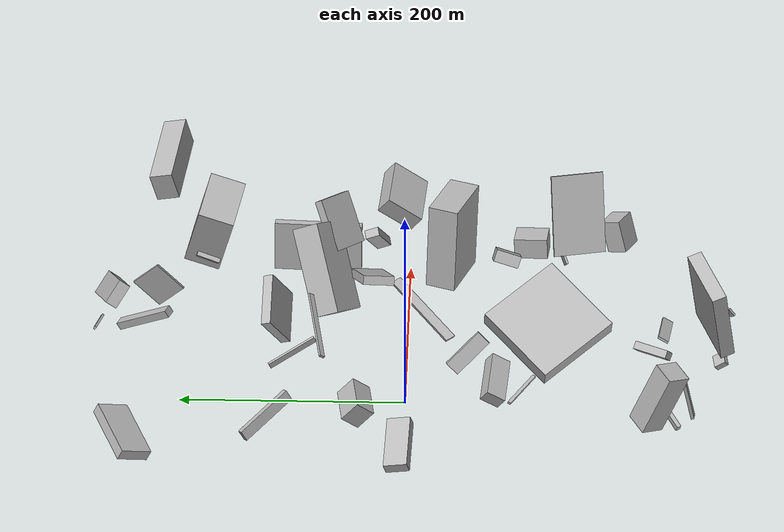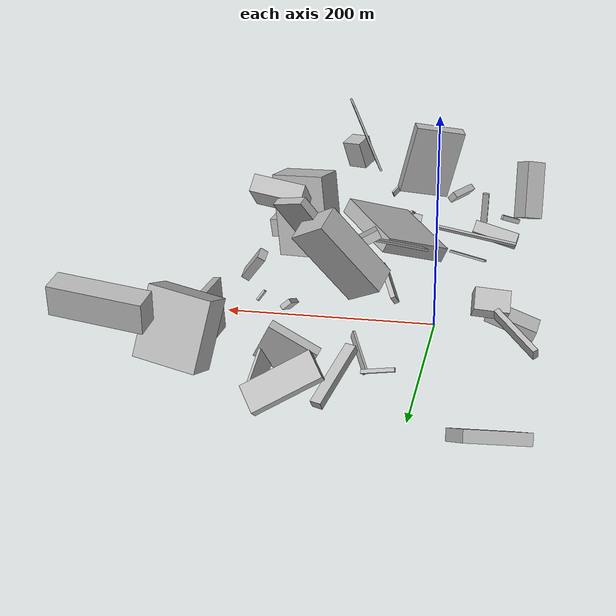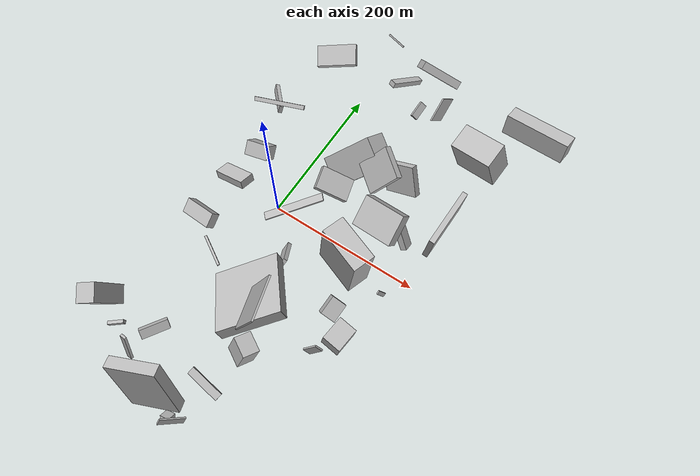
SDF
<sdf version="1.6">
 <world name="default">
  <model name="building_3">
   <static>0</static>
   <pose>192.97304236492172 85.47546947797791 27.54734295703527 -2.9246578618820553 -1.497058092645821 -0.24802232500230567</pose>
   <link name="link">
    <gravity>0</gravity>
    <pose>0 0 3.5 0 0 0</pose>
    <collision name="collision"><geometry><box><size>49 80 7</size></box></geometry></collision>
    <visual name="visual">
     <cast_shadows>0</cast_shadows>
     <geometry><box><size>49 80 7</size></box></geometry>
     <material>
      <script>
       <uri>model://HANNAS_wall/materials/scripts</uri>
       <uri>model://HANNAS_wall/materials/textures</uri>
       <name>vrc/HANNAS_wall</name>
      </script>
     </material>
    </visual>
   </link>
  </model>
  <model name="building_7">
   <static>0</static>
   <pose>98.99492832169584 53.38022202244819 98.04781571579076 -0.5966066065023401 0.2460232629847277 -0.652802261917523</pose>
   <link name="link">
    <gravity>0</gravity>
    <pose>0 0 23.5 0 0 0</pose>
    <collision name="collision"><geometry><box><size>38 8 47</size></box></geometry></collision>
    <visual name="visual">
     <cast_shadows>0</cast_shadows>
     <geometry><box><size>38 8 47</size></box></geometry>
     <material>
      <script>
       <uri>model://HANNAS_wall/materials/scripts</uri>
       <uri>model://HANNAS_wall/materials/textures</uri>
       <name>vrc/HANNAS_wall</name>
      </script>
     </material>
    </visual>
   </link>
  </model>
  <model name="building_8">
   <static>0</static>
   <pose>53.392055561887865 103.60945885586446 15.954613595145167 -2.7565607391013307 0.1871487923129102 -2.6466981905746803</pose>
   <link name="link">
    <gravity>0</gravity>
    <pose>0 0 3.5 0 0 0</pose>
    <collision name="collision"><geometry><box><size>2 47 7</size></box></geometry></collision>
    <visual name="visual">
     <cast_shadows>0</cast_shadows>
     <geometry><box><size>2 47 7</size></box></geometry>
     <material>
      <script>
       <uri>model://HANNAS_wall/materials/scripts</uri>
       <uri>model://HANNAS_wall/materials/textures</uri>
       <name>vrc/HANNAS_wall</name>
      </script>
     </material>
    </visual>
   </link>
  </model>
  <model name="building_9">
   <static>0</static>
   <pose>79.0645504053119 82.57378469528902 84.47843639129705 1.0219529320171858 0.44644635916374964 -0.5595807638957375</pose>
   <link name="link">
    <gravity>0</gravity>
    <pose>0 0 13.0 0 0 0</pose>
    <collision name="collision"><geometry><box><size>39 80 26</size></box></geometry></collision>
    <visual name="visual">
     <cast_shadows>0</cast_shadows>
     <geometry><box><size>39 80 26</size></box></geometry>
     <material>
      <script>
       <uri>model://HANNAS_wall/materials/scripts</uri>
       <uri>model://HANNAS_wall/materials/textures</uri>
       <name>vrc/HANNAS_wall</name>
      </script>
     </material>
    </visual>
   </link>
  </model>
  <model name="building_10">
   <static>0</static>
   <pose>-40.25971775455567 -91.22471693568569 34.157014128838526 -1.4544529416021201 -1.3992725000589104 -2.2122556049603386</pose>
   <link name="link">
    <gravity>0</gravity>
    <pose>0 0 21.5 0 0 0</pose>
    <collision name="collision"><geometry><box><size>2 3 43</size></box></geometry></collision>
    <visual name="visual">
     <cast_shadows>0</cast_shadows>
     <geometry><box><size>2 3 43</size></box></geometry>
     <material>
      <script>
       <uri>model://HANNAS_wall/materials/scripts</uri>
       <uri>model://HANNAS_wall/materials/textures</uri>
       <name>vrc/HANNAS_wall</name>
      </script>
     </material>
    </visual>
   </link>
  </model>
  <model name="building_12">
   <static>0</static>
   <pose>51.812866722415436 -125.35141071927168 56.93802087148891 2.8666292680924457 -0.32961631030790883 0.7921149419964638</pose>
   <link name="link">
    <gravity>0</gravity>
    <pose>0 0 8.0 0 0 0</pose>
    <collision name="collision"><geometry><box><size>80 80 16</size></box></geometry></collision>
    <visual name="visual">
     <cast_shadows>0</cast_shadows>
     <geometry><box><size>80 80 16</size></box></geometry>
     <material>
      <script>
       <uri>model://HANNAS_wall/materials/scripts</uri>
       <uri>model://HANNAS_wall/materials/textures</uri>
       <name>vrc/HANNAS_wall</name>
      </script>
     </material>
    </visual>
   </link>
  </model>
  <model name="building_13">
   <static>0</static>
   <pose>151.57226114424077 -139.58241697971692 55.20493538231259 -1.8301246924462284 -0.7921465529582314 0.5553801383233821</pose>
   <link name="link">
    <gravity>0</gravity>
    <pose>0 0 1.0 0 0 0</pose>
    <collision name="collision"><geometry><box><size>20 11 2</size></box></geometry></collision>
    <visual name="visual">
     <cast_shadows>0</cast_shadows>
     <geometry><box><size>20 11 2</size></box></geometry>
     <material>
      <script>
       <uri>model://HANNAS_wall/materials/scripts</uri>
       <uri>model://HANNAS_wall/materials/textures</uri>
       <name>vrc/HANNAS_wall</name>
      </script>
     </material>
    </visual>
   </link>
  </model>
  <model name="building_14">
   <static>0</static>
   <pose>48.35920126103789 -54.6272026651892 19.196860103909973 -2.1181220450352454 -0.6444645224232497 -1.0750417327579862</pose>
   <link name="link">
    <gravity>0</gravity>
    <pose>0 0 2.5 0 0 0</pose>
    <collision name="collision"><geometry><box><size>40 14 5</size></box></geometry></collision>
    <visual name="visual">
     <cast_shadows>0</cast_shadows>
     <geometry><box><size>40 14 5</size></box></geometry>
     <material>
      <script>
       <uri>model://HANNAS_wall/materials/scripts</uri>
       <uri>model://HANNAS_wall/materials/textures</uri>
       <name>vrc/HANNAS_wall</name>
      </script>
     </material>
    </visual>
   </link>
  </model>
  <model name="building_17">
   <static>0</static>
   <pose>91.73393288284846 -149.4729855063385 142.67462628431645 0.11336087703146594 -1.1797800560831904 0.15089494986948498</pose>
   <link name="link">
    <gravity>0</gravity>
    <pose>0 0 1.0 0 0 0</pose>
    <collision name="collision"><geometry><box><size>72 47 2</size></box></geometry></collision>
    <visual name="visual">
     <cast_shadows>0</cast_shadows>
     <geometry><box><size>72 47 2</size></box></geometry>
     <material>
      <script>
       <uri>model://HANNAS_wall/materials/scripts</uri>
       <uri>model://HANNAS_wall/materials/textures</uri>
       <name>vrc/HANNAS_wall</name>
      </script>
     </material>
    </visual>
   </link>
  </model>
  <model name="building_22">
   <static>0</static>
   <pose>68.66296248332662 -279.2420248553157 51.60006094592227 -1.2058246797877528 -0.6146042038206374 -2.3784577465728693</pose>
   <link name="link">
    <gravity>0</gravity>
    <pose>0 0 1.0 0 0 0</pose>
    <collision name="collision"><geometry><box><size>29 8 2</size></box></geometry></collision>
    <visual name="visual">
     <cast_shadows>0</cast_shadows>
     <geometry><box><size>29 8 2</size></box></geometry>
     <material>
      <script>
       <uri>model://HANNAS_wall/materials/scripts</uri>
       <uri>model://HANNAS_wall/materials/textures</uri>
       <name>vrc/HANNAS_wall</name>
      </script>
     </material>
    </visual>
   </link>
  </model>
  <model name="building_23">
   <static>0</static>
   <pose>-41.93206897605063 256.1865415013085 22.725359280032407 -2.0218059036257285 1.0971051826864333 1.6261815585331043</pose>
   <link name="link">
    <gravity>0</gravity>
    <pose>0 0 28.5 0 0 0</pose>
    <collision name="collision"><geometry><box><size>10 30 57</size></box></geometry></collision>
    <visual name="visual">
     <cast_shadows>0</cast_shadows>
     <geometry><box><size>10 30 57</size></box></geometry>
     <material>
      <script>
       <uri>model://HANNAS_wall/materials/scripts</uri>
       <uri>model://HANNAS_wall/materials/textures</uri>
       <name>vrc/HANNAS_wall</name>
      </script>
     </material>
    </visual>
   </link>
  </model>
  <model name="building_26">
   <static>0</static>
   <pose>125.08240620636778 -37.6451816503635 51.03166776860528 -0.003236962770427686 0.09934238568972567 -0.34138333387811043</pose>
   <link name="link">
    <gravity>0</gravity>
    <pose>0 0 40.0 0 0 0</pose>
    <collision name="collision"><geometry><box><size>55 27 80</size></box></geometry></collision>
    <visual name="visual">
     <cast_shadows>0</cast_shadows>
     <geometry><box><size>55 27 80</size></box></geometry>
     <material>
      <script>
       <uri>model://HANNAS_wall/materials/scripts</uri>
       <uri>model://HANNAS_wall/materials/textures</uri>
       <name>vrc/HANNAS_wall</name>
      </script>
     </material>
    </visual>
   </link>
  </model>
  <model name="building_27">
   <static>0</static>
   <pose>165.85706930077419 -111.60581612781034 46.27806818164005 -0.10385442796023583 -0.06947959670674576 -1.6751016431501464</pose>
   <link name="link">
    <gravity>0</gravity>
    <pose>0 0 9.5 0 0 0</pose>
    <collision name="collision"><geometry><box><size>30 23 19</size></box></geometry></collision>
    <visual name="visual">
     <cast_shadows>0</cast_shadows>
     <geometry><box><size>30 23 19</size></box></geometry>
     <material>
      <script>
       <uri>model://HANNAS_wall/materials/scripts</uri>
       <uri>model://HANNAS_wall/materials/textures</uri>
       <name>vrc/HANNAS_wall</name>
      </script>
     </material>
    </visual>
   </link>
  </model>
  <model name="building_28">
   <static>0</static>
   <pose>32.84942573214455 -260.8169294554072 85.76553445806833 1.3373594751007576 -0.17936247501234714 0.3754164837898614</pose>
   <link name="link">
    <gravity>0</gravity>
    <pose>0 0 6.5 0 0 0</pose>
    <collision name="collision"><geometry><box><size>56 80 13</size></box></geometry></collision>
    <visual name="visual">
     <cast_shadows>0</cast_shadows>
     <geometry><box><size>56 80 13</size></box></geometry>
     <material>
      <script>
       <uri>model://HANNAS_wall/materials/scripts</uri>
       <uri>model://HANNAS_wall/materials/textures</uri>
       <name>vrc/HANNAS_wall</name>
      </script>
     </material>
    </visual>
   </link>
  </model>
  <model name="building_29">
   <static>0</static>
   <pose>-71.00785007464488 -227.2633147749251 69.21059216478392 1.2750171090474498 0.1982551603962828 -2.584024716641018</pose>
   <link name="link">
    <gravity>0</gravity>
    <pose>0 0 11.0 0 0 0</pose>
    <collision name="collision"><geometry><box><size>21 60 22</size></box></geometry></collision>
    <visual name="visual">
     <cast_shadows>0</cast_shadows>
     <geometry><box><size>21 60 22</size></box></geometry>
     <material>
      <script>
       <uri>model://HANNAS_wall/materials/scripts</uri>
       <uri>model://HANNAS_wall/materials/textures</uri>
       <name>vrc/HANNAS_wall</name>
      </script>
     </material>
    </visual>
   </link>
  </model>
  <model name="building_32">
   <static>0</static>
   <pose>-55.74567919713176 48.64487231532478 48.74289724328681 -2.954519717243261 -0.8486920221953025 -1.5579897110546315</pose>
   <link name="link">
    <gravity>0</gravity>
    <pose>0 0 9.5 0 0 0</pose>
    <collision name="collision"><geometry><box><size>21 32 19</size></box></geometry></collision>
    <visual name="visual">
     <cast_shadows>0</cast_shadows>
     <geometry><box><size>21 32 19</size></box></geometry>
     <material>
      <script>
       <uri>model://HANNAS_wall/materials/scripts</uri>
       <uri>model://HANNAS_wall/materials/textures</uri>
       <name>vrc/HANNAS_wall</name>
      </script>
     </material>
    </visual>
   </link>
  </model>
  <model name="building_35">
   <static>0</static>
   <pose>-40.37084333612391 75.6035430083813 115.32081278706303 0.30516257133553365 0.6698893378986052 -1.1950745781209604</pose>
   <link name="link">
    <gravity>0</gravity>
    <pose>0 0 1.0 0 0 0</pose>
    <collision name="collision"><geometry><box><size>5 69 2</size></box></geometry></collision>
    <visual name="visual">
     <cast_shadows>0</cast_shadows>
     <geometry><box><size>5 69 2</size></box></geometry>
     <material>
      <script>
       <uri>model://HANNAS_wall/materials/scripts</uri>
       <uri>model://HANNAS_wall/materials/textures</uri>
       <name>vrc/HANNAS_wall</name>
      </script>
     </material>
    </visual>
   </link>
  </model>
  <model name="building_37">
   <static>0</static>
   <pose>191.7076387205769 195.3122338844505 62.879029736406835 -2.6377160418003642 -1.2410587985009705 -2.200646602155637</pose>
   <link name="link">
    <gravity>0</gravity>
    <pose>0 0 16.5 0 0 0</pose>
    <collision name="collision"><geometry><box><size>61 55 33</size></box></geometry></collision>
    <visual name="visual">
     <cast_shadows>0</cast_shadows>
     <geometry><box><size>61 55 33</size></box></geometry>
     <material>
      <script>
       <uri>model://HANNAS_wall/materials/scripts</uri>
       <uri>model://HANNAS_wall/materials/textures</uri>
       <name>vrc/HANNAS_wall</name>
      </script>
     </material>
    </visual>
   </link>
  </model>
  <model name="building_38">
   <static>0</static>
   <pose>14.776429453669166 -39.0748113785928 61.34994234849725 1.2315252162151353 0.014334508693323174 2.332139363748065</pose>
   <link name="link">
    <gravity>0</gravity>
    <pose>0 0 37.5 0 0 0</pose>
    <collision name="collision"><geometry><box><size>10 2 75</size></box></geometry></collision>
    <visual name="visual">
     <cast_shadows>0</cast_shadows>
     <geometry><box><size>10 2 75</size></box></geometry>
     <material>
      <script>
       <uri>model://HANNAS_wall/materials/scripts</uri>
       <uri>model://HANNAS_wall/materials/textures</uri>
       <name>vrc/HANNAS_wall</name>
      </script>
     </material>
    </visual>
   </link>
  </model>
  <model name="building_39">
   <static>0</static>
   <pose>-74.10918586029412 5.582899557096908 17.083594045775 -2.7888576397272993 -0.2139536871786498 -1.6969899526122818</pose>
   <link name="link">
    <gravity>0</gravity>
    <pose>0 0 5.5 0 0 0</pose>
    <collision name="collision"><geometry><box><size>21 48 11</size></box></geometry></collision>
    <visual name="visual">
     <cast_shadows>0</cast_shadows>
     <geometry><box><size>21 48 11</size></box></geometry>
     <material>
      <script>
       <uri>model://HANNAS_wall/materials/scripts</uri>
       <uri>model://HANNAS_wall/materials/textures</uri>
       <name>vrc/HANNAS_wall</name>
      </script>
     </material>
    </visual>
   </link>
  </model>
  <model name="building_42">
   <static>0</static>
   <pose>107.684089443589 -179.4808071598146 112.42194141037265 0.2180681000439083 -1.2258270892169485 0.8570280582382312</pose>
   <link name="link">
    <gravity>0</gravity>
    <pose>0 0 9.0 0 0 0</pose>
    <collision name="collision"><geometry><box><size>29 22 18</size></box></geometry></collision>
    <visual name="visual">
     <cast_shadows>0</cast_shadows>
     <geometry><box><size>29 22 18</size></box></geometry>
     <material>
      <script>
       <uri>model://HANNAS_wall/materials/scripts</uri>
       <uri>model://HANNAS_wall/materials/textures</uri>
       <name>vrc/HANNAS_wall</name>
      </script>
     </material>
    </visual>
   </link>
  </model>
  <model name="building_43">
   <static>0</static>
   <pose>168.99951674215015 3.62030542628716 125.20040753335608 -1.7536703840874441 -0.6277216093190615 1.5916032617293636</pose>
   <link name="link">
    <gravity>0</gravity>
    <pose>0 0 24.5 0 0 0</pose>
    <collision name="collision"><geometry><box><size>36 17 49</size></box></geometry></collision>
    <visual name="visual">
     <cast_shadows>0</cast_shadows>
     <geometry><box><size>36 17 49</size></box></geometry>
     <material>
      <script>
       <uri>model://HANNAS_wall/materials/scripts</uri>
       <uri>model://HANNAS_wall/materials/textures</uri>
       <name>vrc/HANNAS_wall</name>
      </script>
     </material>
    </visual>
   </link>
  </model>
  <model name="building_44">
   <static>0</static>
   <pose>50.4617173250888 24.49970527619613 97.16551498800928 2.7348011835571766 1.0755422417472351 3.009754866500202</pose>
   <link name="link">
    <gravity>0</gravity>
    <pose>0 0 20.5 0 0 0</pose>
    <collision name="collision"><geometry><box><size>8 28 41</size></box></geometry></collision>
    <visual name="visual">
     <cast_shadows>0</cast_shadows>
     <geometry><box><size>8 28 41</size></box></geometry>
     <material>
      <script>
       <uri>model://HANNAS_wall/materials/scripts</uri>
       <uri>model://HANNAS_wall/materials/textures</uri>
       <name>vrc/HANNAS_wall</name>
      </script>
     </material>
    </visual>
   </link>
  </model>
  <model name="building_49">
   <static>0</static>
   <pose>-77.04181570615671 119.53409264157665 46.99020208949826 -0.8103457580838639 -1.079362720725225 1.4975097125774715</pose>
   <link name="link">
    <gravity>0</gravity>
    <pose>0 0 2.5 0 0 0</pose>
    <collision name="collision"><geometry><box><size>10 54 5</size></box></geometry></collision>
    <visual name="visual">
     <cast_shadows>0</cast_shadows>
     <geometry><box><size>10 54 5</size></box></geometry>
     <material>
      <script>
       <uri>model://HANNAS_wall/materials/scripts</uri>
       <uri>model://HANNAS_wall/materials/textures</uri>
       <name>vrc/HANNAS_wall</name>
      </script>
     </material>
    </visual>
   </link>
  </model>
  <model name="building_50">
   <static>0</static>
   <pose>142.9552833954081 -99.11965541879601 52.27277878343352 1.0232931279796513 0.9808296548381057 2.59130009432672</pose>
   <link name="link">
    <gravity>0</gravity>
    <pose>0 0 11.5 0 0 0</pose>
    <collision name="collision"><geometry><box><size>11 19 23</size></box></geometry></collision>
    <visual name="visual">
     <cast_shadows>0</cast_shadows>
     <geometry><box><size>11 19 23</size></box></geometry>
     <material>
      <script>
       <uri>model://HANNAS_wall/materials/scripts</uri>
       <uri>model://HANNAS_wall/materials/textures</uri>
       <name>vrc/HANNAS_wall</name>
      </script>
     </material>
    </visual>
   </link>
  </model>
  <model name="building_52">
   <static>0</static>
   <pose>101.46238566602776 179.0114900969137 81.98394012883237 -0.4811257969110468 0.7690217569260585 2.708304690339609</pose>
   <link name="link">
    <gravity>0</gravity>
    <pose>0 0 4.5 0 0 0</pose>
    <collision name="collision"><geometry><box><size>4 21 9</size></box></geometry></collision>
    <visual name="visual">
     <cast_shadows>0</cast_shadows>
     <geometry><box><size>4 21 9</size></box></geometry>
     <material>
      <script>
       <uri>model://HANNAS_wall/materials/scripts</uri>
       <uri>model://HANNAS_wall/materials/textures</uri>
       <name>vrc/HANNAS_wall</name>
      </script>
     </material>
    </visual>
   </link>
  </model>
  <model name="building_54">
   <static>0</static>
   <pose>57.65268427449738 -278.679731863116 14.420013559639479 -1.9926179573129414 -0.8630274890786896 2.0443835236675523</pose>
   <link name="link">
    <gravity>0</gravity>
    <pose>0 0 6.0 0 0 0</pose>
    <collision name="collision"><geometry><box><size>6 11 12</size></box></geometry></collision>
    <visual name="visual">
     <cast_shadows>0</cast_shadows>
     <geometry><box><size>6 11 12</size></box></geometry>
     <material>
      <script>
       <uri>model://HANNAS_wall/materials/scripts</uri>
       <uri>model://HANNAS_wall/materials/textures</uri>
       <name>vrc/HANNAS_wall</name>
      </script>
     </material>
    </visual>
   </link>
  </model>
  <model name="building_57">
   <static>0</static>
   <pose>60.001931965487934 256.3210897154685 70.48531321385613 2.222422911879297 0.7358284944194815 2.3510326808650874</pose>
   <link name="link">
    <gravity>0</gravity>
    <pose>0 0 29.0 0 0 0</pose>
    <collision name="collision"><geometry><box><size>23 11 58</size></box></geometry></collision>
    <visual name="visual">
     <cast_shadows>0</cast_shadows>
     <geometry><box><size>23 11 58</size></box></geometry>
     <material>
      <script>
       <uri>model://HANNAS_wall/materials/scripts</uri>
       <uri>model://HANNAS_wall/materials/textures</uri>
       <name>vrc/HANNAS_wall</name>
      </script>
     </material>
    </visual>
   </link>
  </model>
  <model name="building_58">
   <static>0</static>
   <pose>199.86591164508425 225.55051025383128 88.5601113525206 1.474208054499677 0.22186937037667018 1.4561481345893674</pose>
   <link name="link">
    <gravity>0</gravity>
    <pose>0 0 40.0 0 0 0</pose>
    <collision name="collision"><geometry><box><size>21 27 80</size></box></geometry></collision>
    <visual name="visual">
     <cast_shadows>0</cast_shadows>
     <geometry><box><size>21 27 80</size></box></geometry>
     <material>
      <script>
       <uri>model://HANNAS_wall/materials/scripts</uri>
       <uri>model://HANNAS_wall/materials/textures</uri>
       <name>vrc/HANNAS_wall</name>
      </script>
     </material>
    </visual>
   </link>
  </model>
  <model name="building_61">
   <static>0</static>
   <pose>-24.82477960615968 -246.67846649237057 35.93315378077912 1.6384267388137714 -0.22469513499344493 -1.6490081996032495</pose>
   <link name="link">
    <gravity>0</gravity>
    <pose>0 0 3.5 0 0 0</pose>
    <collision name="collision"><geometry><box><size>3 49 7</size></box></geometry></collision>
    <visual name="visual">
     <cast_shadows>0</cast_shadows>
     <geometry><box><size>3 49 7</size></box></geometry>
     <material>
      <script>
       <uri>model://HANNAS_wall/materials/scripts</uri>
       <uri>model://HANNAS_wall/materials/textures</uri>
       <name>vrc/HANNAS_wall</name>
      </script>
     </material>
    </visual>
   </link>
  </model>
  <model name="building_63">
   <static>0</static>
   <pose>164.72745430013163 23.318334266744976 62.56085973976236 2.0206288831722867 0.573273961262655 -2.915133742431008</pose>
   <link name="link">
    <gravity>0</gravity>
    <pose>0 0 6.5 0 0 0</pose>
    <collision name="collision"><geometry><box><size>8 32 13</size></box></geometry></collision>
    <visual name="visual">
     <cast_shadows>0</cast_shadows>
     <geometry><box><size>8 32 13</size></box></geometry>
     <material>
      <script>
       <uri>model://HANNAS_wall/materials/scripts</uri>
       <uri>model://HANNAS_wall/materials/textures</uri>
       <name>vrc/HANNAS_wall</name>
      </script>
     </material>
    </visual>
   </link>
  </model>
  <model name="building_64">
   <static>0</static>
   <pose>61.00967849327135 255.48240622657607 37.17745849791013 -0.06327823215487273 -1.0442267751490533 1.2553066493711764</pose>
   <link name="link">
    <gravity>0</gravity>
    <pose>0 0 28.5 0 0 0</pose>
    <collision name="collision"><geometry><box><size>7 9 57</size></box></geometry></collision>
    <visual name="visual">
     <cast_shadows>0</cast_shadows>
     <geometry><box><size>7 9 57</size></box></geometry>
     <material>
      <script>
       <uri>model://HANNAS_wall/materials/scripts</uri>
       <uri>model://HANNAS_wall/materials/textures</uri>
       <name>vrc/HANNAS_wall</name>
      </script>
     </material>
    </visual>
   </link>
  </model>
  <model name="building_66">
   <static>0</static>
   <pose>105.32610582723385 127.68397224036008 33.34839898590084 2.615215096254249 0.33659939184445786 1.3677356054544827</pose>
   <link name="link">
    <gravity>0</gravity>
    <pose>0 0 21.5 0 0 0</pose>
    <collision name="collision"><geometry><box><size>9 48 43</size></box></geometry></collision>
    <visual name="visual">
     <cast_shadows>0</cast_shadows>
     <geometry><box><size>9 48 43</size></box></geometry>
     <material>
      <script>
       <uri>model://HANNAS_wall/materials/scripts</uri>
       <uri>model://HANNAS_wall/materials/textures</uri>
       <name>vrc/HANNAS_wall</name>
      </script>
     </material>
    </visual>
   </link>
  </model>
  <model name="building_67">
   <static>0</static>
   <pose>-48.120383708703145 -75.62317568671503 61.736376585754584 0.577246540243496 -0.23845521059120195 -0.1009509919358742</pose>
   <link name="link">
    <gravity>0</gravity>
    <pose>0 0 6.0 0 0 0</pose>
    <collision name="collision"><geometry><box><size>43 18 12</size></box></geometry></collision>
    <visual name="visual">
     <cast_shadows>0</cast_shadows>
     <geometry><box><size>43 18 12</size></box></geometry>
     <material>
      <script>
       <uri>model://HANNAS_wall/materials/scripts</uri>
       <uri>model://HANNAS_wall/materials/textures</uri>
       <name>vrc/HANNAS_wall</name>
      </script>
     </material>
    </visual>
   </link>
  </model>
  <model name="building_68">
   <static>0</static>
   <pose>90.0067939822033 -233.08140015284397 27.8383315174853 -1.0813372454249792 1.073449227053943 1.8715485842362822</pose>
   <link name="link">
    <gravity>0</gravity>
    <pose>0 0 21.5 0 0 0</pose>
    <collision name="collision"><geometry><box><size>2 10 43</size></box></geometry></collision>
    <visual name="visual">
     <cast_shadows>0</cast_shadows>
     <geometry><box><size>2 10 43</size></box></geometry>
     <material>
      <script>
       <uri>model://HANNAS_wall/materials/scripts</uri>
       <uri>model://HANNAS_wall/materials/textures</uri>
       <name>vrc/HANNAS_wall</name>
      </script>
     </material>
    </visual>
   </link>
  </model>
  <model name="building_69">
   <static>0</static>
   <pose>115.38426876167944 237.06925588204473 31.2089024667621 -0.09802816644008859 -0.79877958721806 1.4734290492609026</pose>
   <link name="link">
    <gravity>0</gravity>
    <pose>0 0 16.5 0 0 0</pose>
    <collision name="collision"><geometry><box><size>33 2 33</size></box></geometry></collision>
    <visual name="visual">
     <cast_shadows>0</cast_shadows>
     <geometry><box><size>33 2 33</size></box></geometry>
     <material>
      <script>
       <uri>model://HANNAS_wall/materials/scripts</uri>
       <uri>model://HANNAS_wall/materials/textures</uri>
       <name>vrc/HANNAS_wall</name>
      </script>
     </material>
    </visual>
   </link>
  </model>
  <model name="building_77">
   <static>0</static>
   <pose>174.28285592616453 -25.65709173861982 7.765451449706898 2.1377129485576036 -0.4737294382540535 -0.37798189739466437</pose>
   <link name="link">
    <gravity>0</gravity>
    <pose>0 0 2.5 0 0 0</pose>
    <collision name="collision"><geometry><box><size>2 12 5</size></box></geometry></collision>
    <visual name="visual">
     <cast_shadows>0</cast_shadows>
     <geometry><box><size>2 12 5</size></box></geometry>
     <material>
      <script>
       <uri>model://HANNAS_wall/materials/scripts</uri>
       <uri>model://HANNAS_wall/materials/textures</uri>
       <name>vrc/HANNAS_wall</name>
      </script>
     </material>
    </visual>
   </link>
  </model>
  <model name="building_79">
   <static>0</static>
   <pose>-6.377525252619176 -214.36399227670307 63.59563790067146 0.11057529269717568 -0.7774503430525501 2.508248795168736</pose>
   <link name="link">
    <gravity>0</gravity>
    <pose>0 0 3.5 0 0 0</pose>
    <collision name="collision"><geometry><box><size>11 32 7</size></box></geometry></collision>
    <visual name="visual">
     <cast_shadows>0</cast_shadows>
     <geometry><box><size>11 32 7</size></box></geometry>
     <material>
      <script>
       <uri>model://HANNAS_wall/materials/scripts</uri>
       <uri>model://HANNAS_wall/materials/textures</uri>
       <name>vrc/HANNAS_wall</name>
      </script>
     </material>
    </visual>
   </link>
  </model>
  <model name="building_80">
   <static>0</static>
   <pose>-49.085603896083725 -226.33450142513854 37.8695104527275 -1.9230856723206136 -0.0056979615281977656 2.13438729351462</pose>
   <link name="link">
    <gravity>0</gravity>
    <pose>0 0 11.0 0 0 0</pose>
    <collision name="collision"><geometry><box><size>4 5 22</size></box></geometry></collision>
    <visual name="visual">
     <cast_shadows>0</cast_shadows>
     <geometry><box><size>4 5 22</size></box></geometry>
     <material>
      <script>
       <uri>model://HANNAS_wall/materials/scripts</uri>
       <uri>model://HANNAS_wall/materials/textures</uri>
       <name>vrc/HANNAS_wall</name>
      </script>
     </material>
    </visual>
   </link>
  </model>
  <model name="building_81">
   <static>0</static>
   <pose>12.919090232618752 267.91339060997666 75.00342144568464 -0.36098926452985175 -0.9265243954181771 -1.4343851347999643</pose>
   <link name="link">
    <gravity>0</gravity>
    <pose>0 0 1.0 0 0 0</pose>
    <collision name="collision"><geometry><box><size>3 26 2</size></box></geometry></collision>
    <visual name="visual">
     <cast_shadows>0</cast_shadows>
     <geometry><box><size>3 26 2</size></box></geometry>
     <material>
      <script>
       <uri>model://HANNAS_wall/materials/scripts</uri>
       <uri>model://HANNAS_wall/materials/textures</uri>
       <name>vrc/HANNAS_wall</name>
      </script>
     </material>
    </visual>
   </link>
  </model>
 </world>
</sdf>
